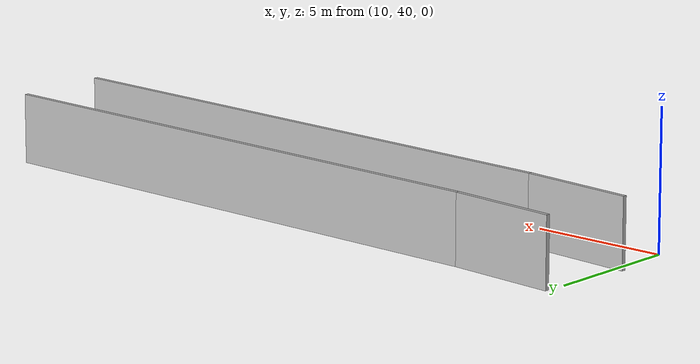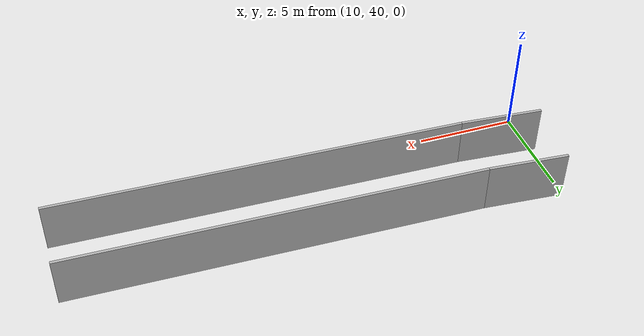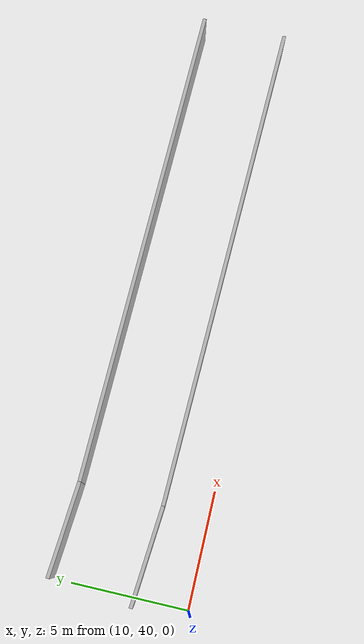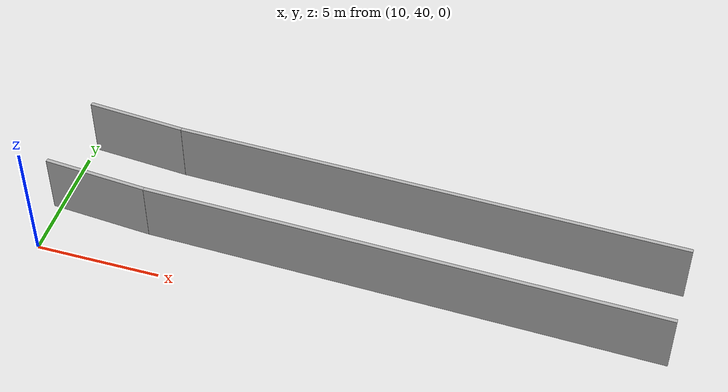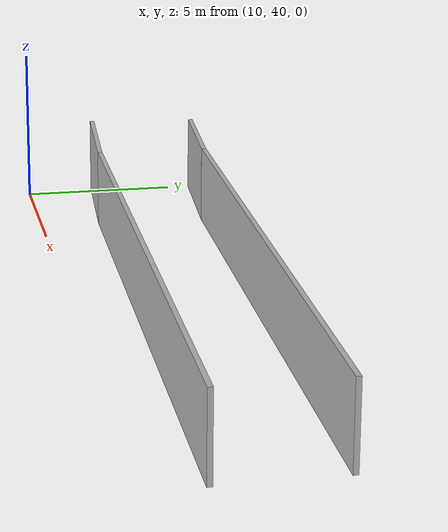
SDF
<?xml version="1.0" ?>
<sdf version="1.6">
  <model name="sps_2602">
    <pose frame="">0 0 0 0 -0 0</pose>
    <static>1</static>
    <self_collide>0</self_collide>
    <allow_auto_disable>0</allow_auto_disable>
    <link name="Wall306">
      <kinematic>0</kinematic>
      <gravity>1</gravity>
      <self_collide>0</self_collide>
      <collision name="collision">
        <geometry>
          <box>
            <size>4.00867 0.15 2.5</size>
          </box>
        </geometry>
        <pose frame="">0 0 0 0 -0 0</pose>
      </collision>
      <visual name="visual">
        <geometry>
          <box>
            <size>4.00867 0.15 2.5</size>
          </box>
        </geometry>
        <pose frame="">0 0 0 0 -0 0</pose>
        <cast_shadows>1</cast_shadows>
        <transparency>0.0</transparency>
      </visual>
      <pose frame="">12.0576 45.632 1.25 0 0 -0.0807692</pose>
    </link>
    <link name="Wall462">
      <kinematic>0</kinematic>
      <gravity>1</gravity>
      <self_collide>0</self_collide>
      <collision name="collision">
        <geometry>
          <box>
            <size>20.6064 0.15 2.5</size>
          </box>
        </geometry>
        <pose frame="">0 0 0 0 -0 0</pose>
      </collision>
      <visual name="visual">
        <geometry>
          <box>
            <size>20.6064 0.15 2.5</size>
          </box>
        </geometry>
        <pose frame="">0 0 0 0 -0 0</pose>
        <cast_shadows>1</cast_shadows>
        <transparency>0.0</transparency>
      </visual>
      <pose frame="">24.1696 41.7095 1.25 0 -0 3.11591</pose>
    </link>
    <link name="Wall463">
      <kinematic>0</kinematic>
      <gravity>1</gravity>
      <self_collide>0</self_collide>
      <collision name="collision">
        <geometry>
          <box>
            <size>20.4207 0.15 2.5</size>
          </box>
        </geometry>
        <pose frame="">0 0 0 0 -0 0</pose>
      </collision>
      <visual name="visual">
        <geometry>
          <box>
            <size>20.4207 0.15 2.5</size>
          </box>
        </geometry>
        <pose frame="">0 0 0 0 -0 0</pose>
        <cast_shadows>1</cast_shadows>
        <transparency>0.0</transparency>
      </visual>
      <pose frame="">24.2624 45.2081 1.25 0 0 -0.0256802</pose>
    </link>
    <link name="Wall562">
      <kinematic>0</kinematic>
      <gravity>1</gravity>
      <self_collide>0</self_collide>
      <collision name="collision">
        <geometry>
          <box>
            <size>4.19887 0.15 2.5</size>
          </box>
        </geometry>
        <pose frame="">0 0 0 0 -0 0</pose>
      </collision>
      <visual name="visual">
        <geometry>
          <box>
            <size>4.19887 0.15 2.5</size>
          </box>
        </geometry>
        <pose frame="">0 0 0 0 -0 0</pose>
        <cast_shadows>1</cast_shadows>
        <transparency>0.0</transparency>
      </visual>
      <pose frame="">11.7772 42.1435 1.25 0 -0 3.06082</pose>
    </link>
  </model>
</sdf>
